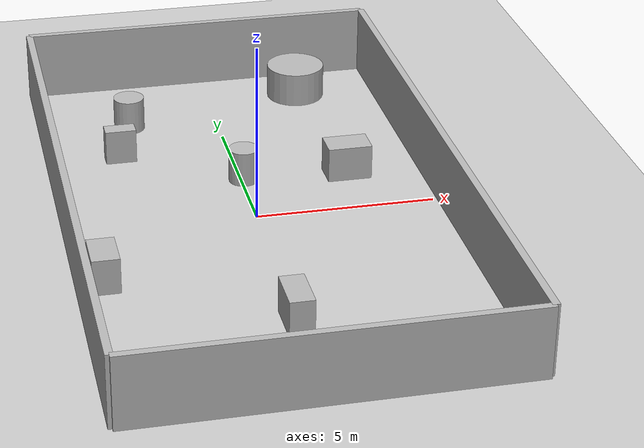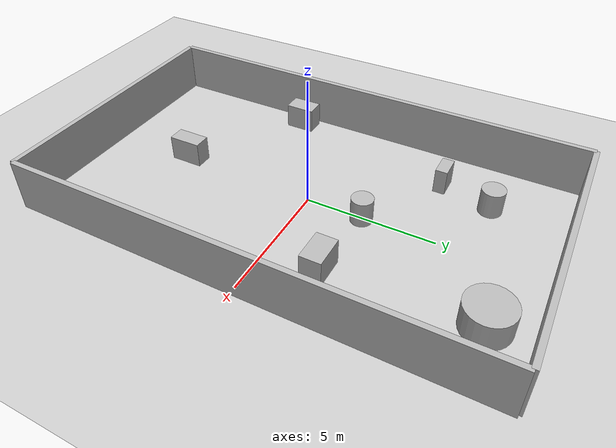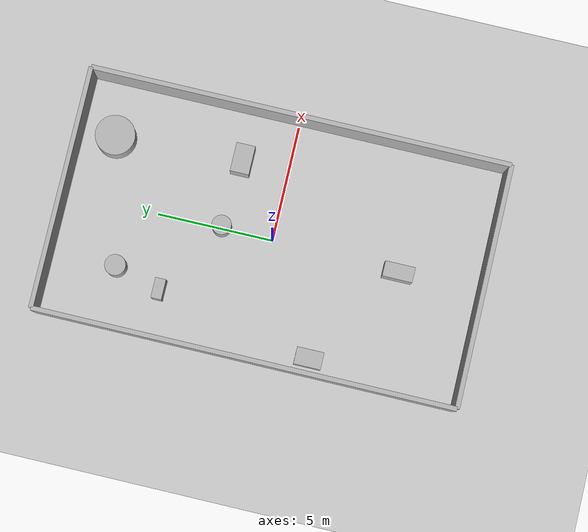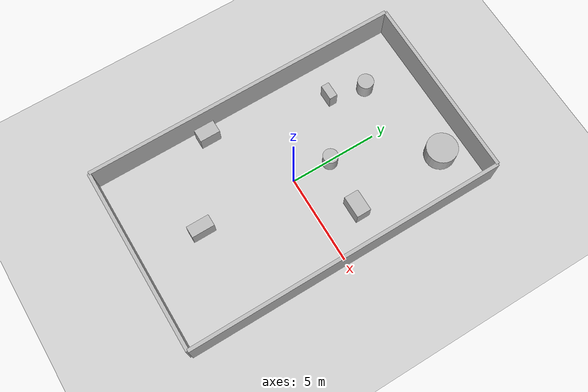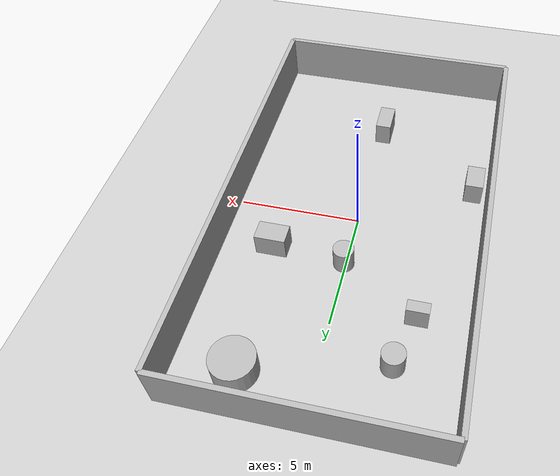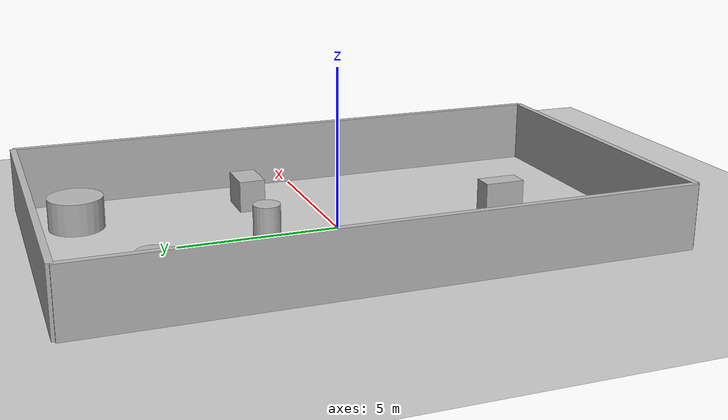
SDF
<?xml version="1.0"?>
<sdf version="1.6">
  <world name="env_97">

    <include><uri>model://ground_plane</uri></include>
    <include><uri>model://sun</uri></include>

    <!-- WALLS -->
    <model name="wall_north"><static>true</static><pose>0 9.04766523294975 1 0 0 0</pose>
      <link name="link"><collision name="collision">
        <geometry><box><size>10.419040157346682 0.2 2</size></box></geometry>
      </collision><visual name="visual">
        <geometry><box><size>10.419040157346682 0.2 2</size></box></geometry>
      </visual></link>
    </model>

    <model name="wall_south"><static>true</static><pose>0 -9.04766523294975 1 0 0 0</pose>
      <link name="link"><collision name="collision">
        <geometry><box><size>10.419040157346682 0.2 2</size></box></geometry>
      </collision><visual name="visual">
        <geometry><box><size>10.419040157346682 0.2 2</size></box></geometry>
      </visual></link>
    </model>

    <model name="wall_east"><static>true</static><pose>5.209520078673341 0 1 0 0 1.57</pose>
      <link name="link"><collision name="collision">
        <geometry><box><size>18.0953304658995 0.2 2</size></box></geometry>
      </collision><visual name="visual">
        <geometry><box><size>18.0953304658995 0.2 2</size></box></geometry>
      </visual></link>
    </model>

    <model name="wall_west"><static>true</static><pose>-5.209520078673341 0 1 0 0 1.57</pose>
      <link name="link"><collision name="collision">
        <geometry><box><size>18.0953304658995 0.2 2</size></box></geometry>
      </collision><visual name="visual">
        <geometry><box><size>18.0953304658995 0.2 2</size></box></geometry>
      </visual></link>
    </model>

    <!-- SENSOR -->

    <model name="lidar_sensor">
      <static>true</static>
      <pose>-3.431520103448638 7.0280581162722555 0.4 0 0 0</pose>
      <link name="link">
        <sensor name="lidar" type="ray">
          <pose>0 0 0 0 0 0</pose>
          <visualize>true</visualize>
          <always_on>true</always_on>
          <update_rate>10</update_rate>
          <ray>
            <scan><horizontal>
              <samples>120</samples>
              <resolution>1</resolution>
              <min_angle>-3.14159</min_angle>
              <max_angle>3.14159</max_angle>
            </horizontal></scan>
            <range><min>0.15</min><max>20.0</max><resolution>0.01</resolution></range>
          </ray>
          <plugin name="lidar_plugin" filename="liblidar_plugin.so"/>
        </sensor>
      </link>
    </model>

    <!-- OBSTACLES -->

    <model name="obstacle_0">
      <static>true</static>
      <pose>0.08170995624974786 2.2181540164748874 0.5 0 0 0</pose>
      <link name="link">
        <collision name="collision">
          <geometry><cylinder><radius>0.42</radius><length>1.0</length></cylinder></geometry>
        </collision>
        <visual name="visual">
          <geometry><cylinder><radius>0.42</radius><length>1.0</length></cylinder></geometry>
        </visual>
      </link>
    </model>

    <model name="obstacle_1">
      <static>true</static>
      <pose>3.030187108547497 2.0028856692002304 0.5 0 0 0</pose>
      <link name="link">
        <collision name="collision">
          <geometry><box><size>1.25 0.82 1.0</size></box></geometry>
        </collision>
        <visual name="visual">
          <geometry><box><size>1.25 0.82 1.0</size></box></geometry>
        </visual>
      </link>
    </model>

    <model name="obstacle_2">
      <static>true</static>
      <pose>-0.13605101999047253 -5.503316432201734 0.5 0 0 0</pose>
      <link name="link">
        <collision name="collision">
          <geometry><box><size>0.66 1.29 1.0</size></box></geometry>
        </collision>
        <visual name="visual">
          <geometry><box><size>0.66 1.29 1.0</size></box></geometry>
        </visual>
      </link>
    </model>

    <model name="obstacle_3">
      <static>true</static>
      <pose>-2.6020752940190994 6.18045595755034 0.5 0 0 0</pose>
      <link name="link">
        <collision name="collision">
          <geometry><cylinder><radius>0.45</radius><length>1.0</length></cylinder></geometry>
        </collision>
        <visual name="visual">
          <geometry><cylinder><radius>0.45</radius><length>1.0</length></cylinder></geometry>
        </visual>
      </link>
    </model>

    <model name="obstacle_4">
      <static>true</static>
      <pose>-3.151726680211378 4.172870686206137 0.5 0 0 0</pose>
      <link name="link">
        <collision name="collision">
          <geometry><box><size>0.88 0.46 1.0</size></box></geometry>
        </collision>
        <visual name="visual">
          <geometry><box><size>0.88 0.46 1.0</size></box></geometry>
        </visual>
      </link>
    </model>

    <model name="obstacle_5">
      <static>true</static>
      <pose>-4.5415098619196685 -2.644969424124814 0.5 0 0 0</pose>
      <link name="link">
        <collision name="collision">
          <geometry><box><size>0.74 1.16 1.0</size></box></geometry>
        </collision>
        <visual name="visual">
          <geometry><box><size>0.74 1.16 1.0</size></box></geometry>
        </visual>
      </link>
    </model>

    <model name="obstacle_6">
      <static>true</static>
      <pose>2.768195087666771 7.498835081723165 0.5 0 0 0</pose>
      <link name="link">
        <collision name="collision">
          <geometry><cylinder><radius>0.86</radius><length>1.0</length></cylinder></geometry>
        </collision>
        <visual name="visual">
          <geometry><cylinder><radius>0.86</radius><length>1.0</length></cylinder></geometry>
        </visual>
      </link>
    </model>

  </world>
</sdf>
